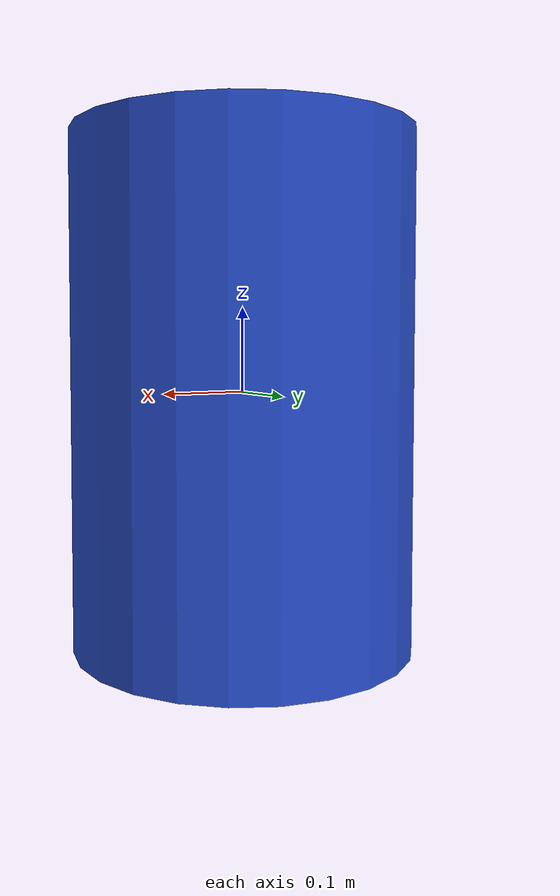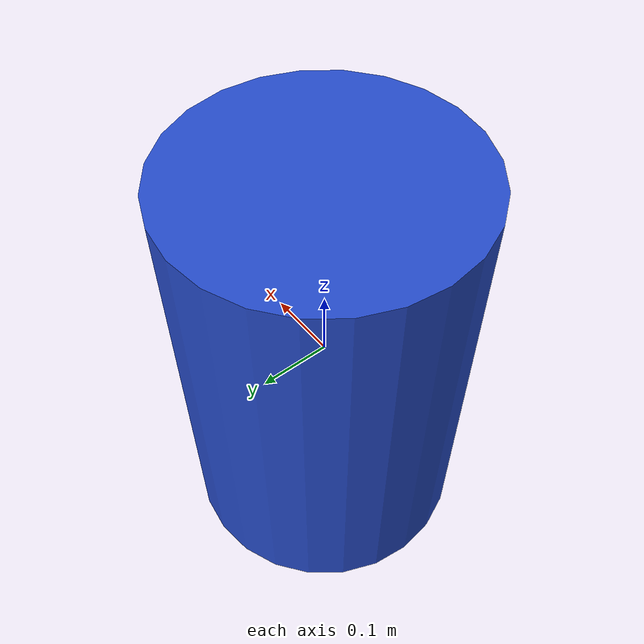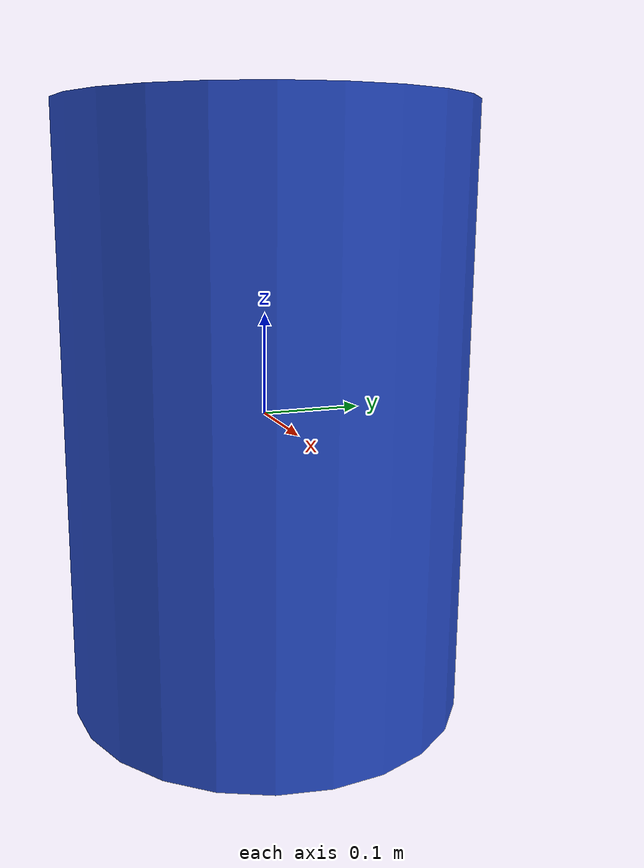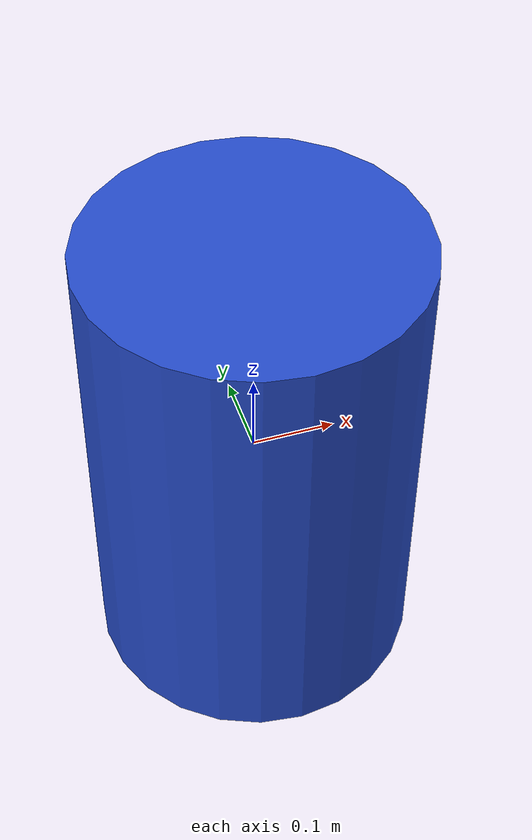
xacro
<?xml version="1.0"?>
<robot xmlns:xacro="http://www.ros.org/wiki/xacro" name="kuri">

  <link name="base_link">
    <visual>
      <geometry>
        <cylinder length="0.6" radius="0.2"/>
      </geometry>
      <material name="blue"/>
    </visual>
    <collision>
      <geometry>
        <cylinder length="0.6" radius="0.2"/>
      </geometry>
    </collision>
  </link>

</robot>

<?xml version="1.0"?>
<robot name="kuri" xmlns:xacro="http://ros.org/wiki/xacro">

  <xacro:include filename="$(find unity_sim)/urdf/common_properties.urdf.xacro"/>
  <xacro:include filename="$(find unity_sim)/urdf/materials.urdf.xacro" />
  <xacro:include filename="$(find unity_sim)/urdf/sensors/upward_camera.urdf.xacro"/>

  <xacro:include filename="$(find unity_sim)/urdf/robots/gizmo/gazebo.urdf.xacro"/>

  <xacro:include filename="$(find unity_sim)/urdf/robots/gizmo/body.urdf.xacro"/>
  <xacro:include filename="$(find unity_sim)/urdf/robots/gizmo/head.urdf.xacro"/>

  <xacro:macro name="base">
    <!-- transmissions -->
    <wheel_transmission side="left" />
    <wheel_transmission side="right" />

    <caster_transmission side="front" />
    <caster_transmission side="back" />

    <!--
       Base link is set at the center of the wheel axis.
      -->
    <link name="base_link">
      <visual>
        <geometry>
          <!-- new mesh -->
          <!--cylinder length="0.09953" radius="0.10"/-->
          <mesh filename="package://gizmo_description/meshes/stacks/lego_wheels/base_link.STL" />
        </geometry>
        <material name="LightGrey" />
      </visual>
      <collision name="base_footprint_collision_base_link">
        <geometry>
          <cylinder length="0.03" radius="0.15"/>
        </geometry>
        <origin xyz="0.0 0.0 0.03" rpy="0 0 0"/>
      </collision>
      <inertial>
        <!-- COM -->
        <origin xyz="0.0 0 0"/>
        <mass value="2.4"/>
        <inertia ixx="0.019995" ixy="0.0" ixz="0.0"
                 iyy="0.019995" iyz="0.0"
                 izz="0.03675" />
      </inertial>
    </link>

    <joint name="bumper_joint" type="fixed">
      <origin xyz="0.0 0.0 0.0" rpy="0 0 0" />
      <parent link="base_link"/>
      <child link="bumper_link" />
    </joint>
    <link name="bumper_link">
      <collision name="base_footprint_collision_bumper_link">
        <geometry>
          <cylinder length="0.03" radius="0.15"/>
        </geometry>
        <origin xyz="0.01 0.0 0.03" rpy="0 0 0"/>
      </collision>
    </link>

    <joint name="front_left_wheel" type="continuous">
      <parent link="base_link"/>
      <child link="front_left_wheel_link"/>
      <origin xyz="0.00 0.0875 0.0" rpy="${-M_PI/2} 0 0"/>
      <axis xyz="0 0 1"/>
      <limit effort="2.0" velocity="10.0"/>
    </joint>
    <link name="front_left_wheel_link">
      <visual>
        <geometry>
          <mesh filename="package://gizmo_description/meshes/stacks/lego_wheels/wheel_link.STL"/>
        </geometry>
        <origin xyz="0 0 0" rpy="0 0 0"/>
      </visual>
      <collision>
        <geometry>
          <cylinder length="0.02" radius="0.035"/>
        </geometry>
        <origin rpy="0 0 0" xyz="0 0 0"/>
      </collision>
      <inertial>
        <mass value="0.01" />
        <origin xyz="0 0 0" />
        <inertia ixx="0.001" ixy="0.0" ixz="0.0"
                 iyy="0.001" iyz="0.0"
                 izz="0.001" />
      </inertial>
    </link>

    <joint name="front_right_wheel" type="continuous">
      <parent link="base_link"/>
      <child link="front_right_wheel_link"/>
      <origin xyz="0.00 -0.0875 0.0" rpy="${-M_PI/2} 0 0"/>
      <axis xyz="0 0 1"/>
      <limit effort="2.0" velocity="10.0"/>
    </joint>
    <link name="front_right_wheel_link">
      <visual>
        <geometry>
          <!--cylinder length="0.015" radius="0.0408"/-->
          <mesh filename="package://gizmo_description/meshes/stacks/lego_wheels/wheel_link.STL"/>
        </geometry>
        <origin xyz="0 0 0" rpy="0 0 0"/>
      </visual>
      <collision>
        <geometry>
          <cylinder length="0.02" radius="0.035"/>
        </geometry>
        <origin rpy="0 0 0" xyz="0 0 0"/>
      </collision>
      <inertial>
        <mass value="0.01" />
        <origin xyz="0 0 0" />
        <inertia ixx="0.001" ixy="0.0" ixz="0.0"
                 iyy="0.001" iyz="0.0"
                 izz="0.001" />
      </inertial>
    </link>

    <joint name="caster_front_joint" type="fixed">
      <parent link="base_link"/>
      <child link="caster_front_link"/>
      <origin xyz="0.07778 0.0 -0.02542" rpy="${-M_PI/2} 0 0"/>
    </joint>
    <link name="caster_front_link">
      <visual>
        <geometry>
          <cylinder length="0.022" radius="0.0096"/>
        </geometry>
        <origin xyz="0 0 0" rpy="0 0 0"/>
      </visual>
      <collision>
        <geometry>
          <cylinder length="0.022" radius="0.0096"/>
        </geometry>
        <origin rpy="0 0 0" xyz="0 0 0"/>
      </collision>
      <inertial>
        <mass value="0.01" />
        <origin xyz="0 0 0" />
        <inertia ixx="0.001" ixy="0.0" ixz="0.0"
                 iyy="0.001" iyz="0.0"
                 izz="0.001" />
      </inertial>
    </link>

    <joint name="caster_back_joint" type="fixed">
      <parent link="base_link"/>
      <child link="caster_back_link"/>
      <origin xyz="-0.07778 0.0 -0.02542" rpy="${-M_PI/2} 0 0"/>
    </joint>
    <link name="caster_back_link">
      <visual>
        <geometry>
          <cylinder length="0.022" radius="0.0096"/>
        </geometry>
        <origin xyz="0 0 0" rpy="0 0 0"/>
      </visual>
       <collision>
        <geometry>
          <cylinder length="0.022" radius="0.0096"/>
        </geometry>
        <origin rpy="0 0 0" xyz="0 0 0"/>
      </collision>
      <inertial>
        <mass value="0.01" />
        <origin xyz="0 0 0" />
        <inertia ixx="0.001" ixy="0.0" ixz="0.0"
                 iyy="0.001" iyz="0.0"
                 izz="0.001" />
      </inertial>
    </link>

    <!-- Gizmo's sensors -->
    <joint name="gyro_joint" type="fixed">
      <axis xyz="0 1 0"/>
      <origin xyz="-0.0425 0.085 0.13" rpy="0 0 0"/>
      <parent link="base_link"/>
      <child link="gyro_link"/>
    </joint>
    <link name="gyro_link">
      <inertial>
        <mass value="0.001"/>
        <origin xyz="0 0 0" rpy="0 0 0"/>
        <inertia ixx="0.0001" ixy="0" ixz="0"
                 iyy="0.000001" iyz="0"
                 izz="0.0001"/>
      </inertial>
    </link>

    <joint name="cliff_sensor_left_joint" type="fixed">
      <origin xyz="0.0707 0.0707 0.0214" rpy="0 ${M_PI/2} 0" />
      <parent link="base_link"/>
      <child link="cliff_sensor_left_link" />
    </joint>
    <link name="cliff_sensor_left_link">
      <inertial>
        <mass value="0.0001" />
        <origin xyz="0 0 0" />
        <inertia ixx="0.0001" ixy="0.0" ixz="0.0"
                 iyy="0.0001" iyz="0.0"
                 izz="0.0001" />
      </inertial>
    </link>

    <joint name="cliff_sensor_right_joint" type="fixed">
      <origin xyz="0.0707 -0.0707 0.0214" rpy="0 ${M_PI/2} 0" />
      <parent link="base_link"/>
      <child link="cliff_sensor_right_link" />
    </joint>
    <link name="cliff_sensor_right_link">
      <inertial>
        <mass value="0.0001" />
        <origin xyz="0 0 0" />
        <inertia ixx="0.0001" ixy="0.0" ixz="0.0"
                 iyy="0.0001" iyz="0.0"
                 izz="0.0001" />
      </inertial>
    </link>

    <joint name="cliff_sensor_front_joint" type="fixed">
      <origin xyz="0.1 0.00 0.0214" rpy="0 ${M_PI/2} 0" />
      <parent link="base_link"/>
      <child link="cliff_sensor_front_link" />
    </joint>
    <link name="cliff_sensor_front_link">
      <inertial>
        <mass value="0.0001" />
        <origin xyz="0 0 0" />
        <inertia ixx="0.0001" ixy="0.0" ixz="0.0"
                 iyy="0.0001" iyz="0.0"
                 izz="0.0001" />
      </inertial>
    </link>

    <!-- Gizmo Gazebo simulation details -->
    <gizmo_sim />

    <link name="laser"></link>
    <joint name="laser_joint" type="fixed">
      <parent link="base_link" />
      <child link="laser" />
      <origin xyz="0 0 0.214" />
    </joint>

  </xacro:macro>

  <xacro:base></xacro:base>

</robot>
